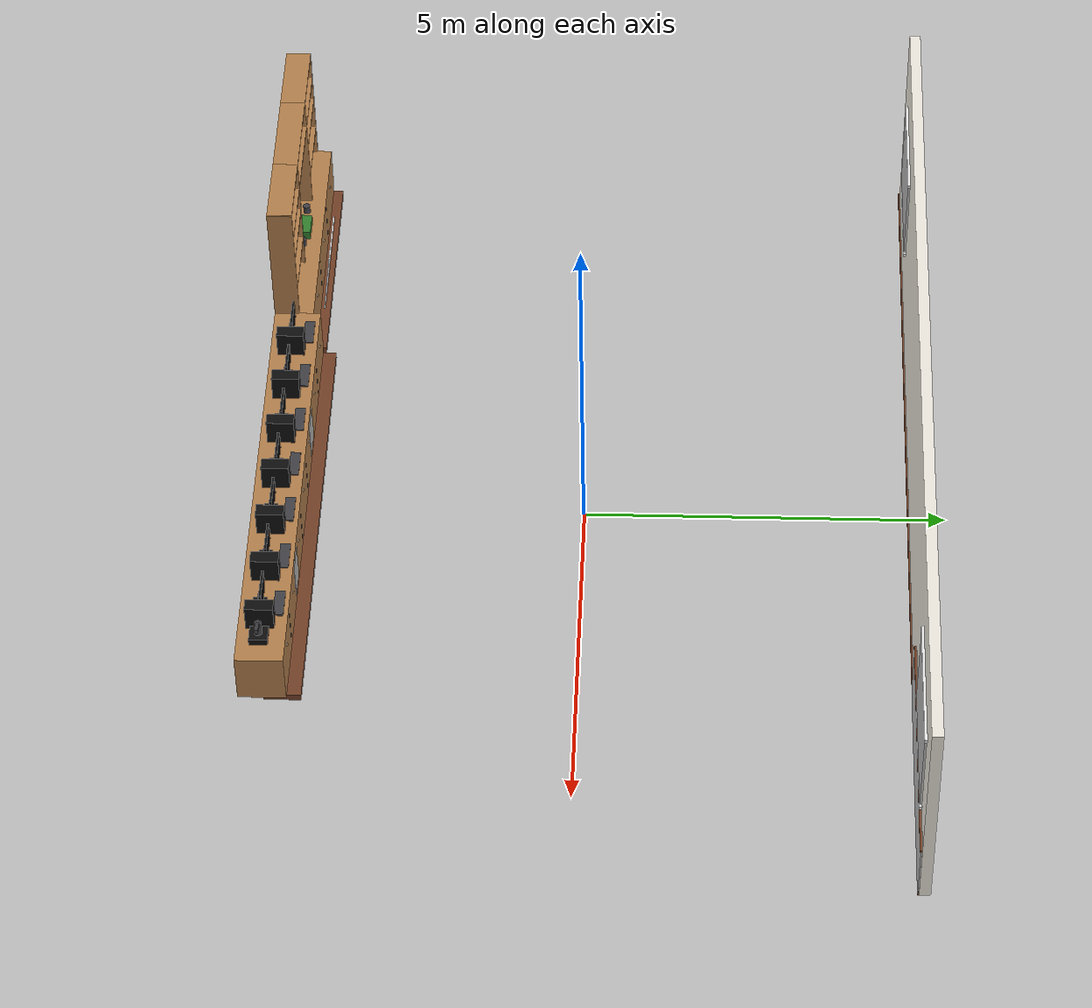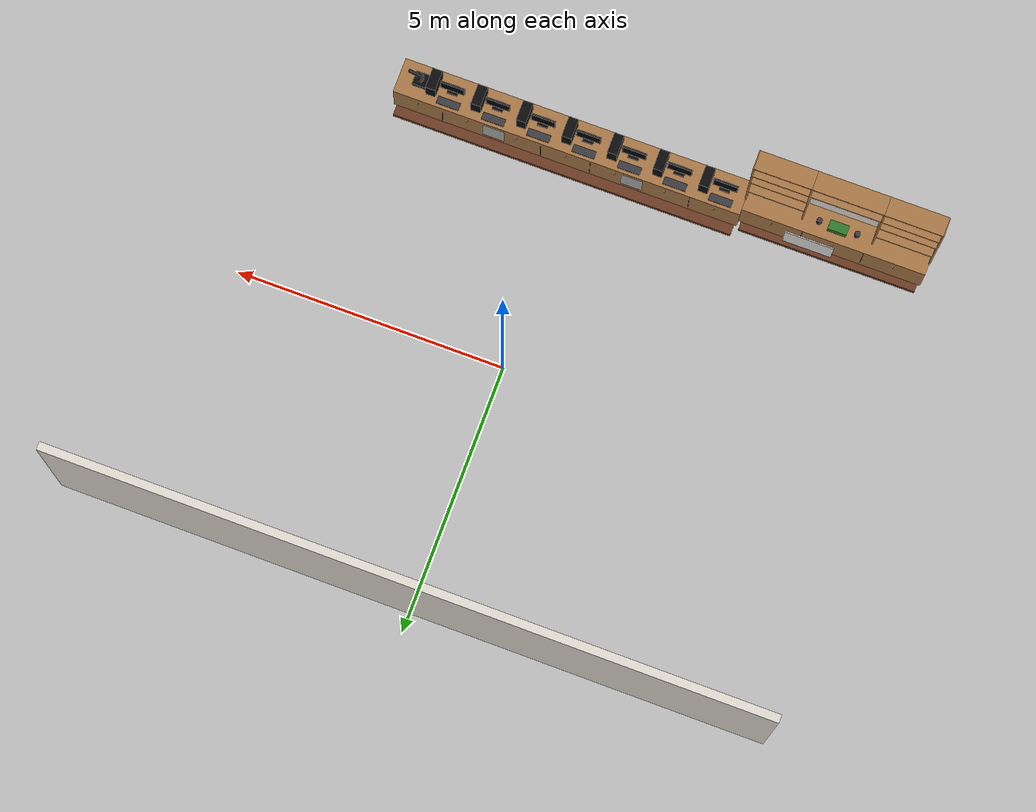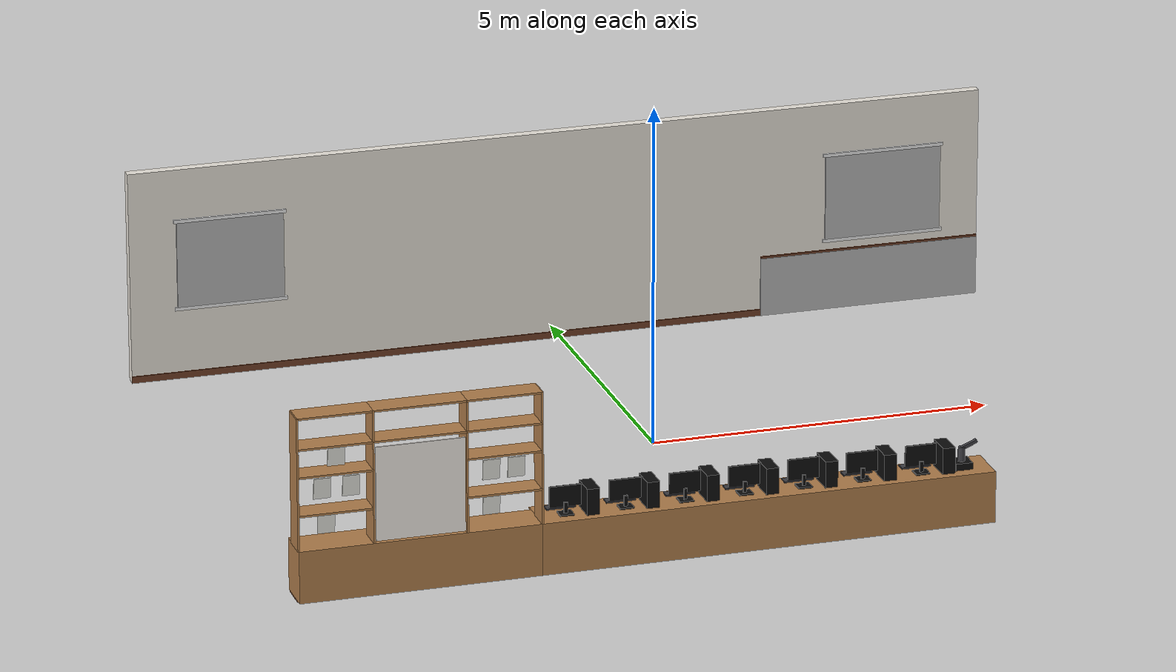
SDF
<sdf version="1.6">
 <world name="mahadev_lab">
  <include><uri>model://sun</uri></include>
  <model name="wall_left_counter">
   <static>true</static>
   <pose>0.0000 4.5750 0.0000 0.0000 0.0000 0.0000</pose>
   <link name="link">
    <visual name="v1">
     <pose>0.0000 0.0000 1.6000 0.0000 0.0000 0.0000</pose>
     <geometry><box><size>13 0.15 3.2</size></box></geometry>
     <material>
      <ambient>0.93 0.91 0.87 1</ambient>
      <diffuse>0.93 0.91 0.87 1</diffuse>
      <specular>0.1 0.1 0.1 1</specular>
     </material>
    </visual>
    <collision name="c1">
     <pose>0.0000 0.0000 1.6000 0.0000 0.0000 0.0000</pose>
     <geometry><box><size>13 0.15 3.2</size></box></geometry>
     <surface><friction><ode><mu>100</mu><mu2>100</mu2></ode></friction></surface>
    </collision>
    <visual name="v2">
     <pose>0.0000 -0.0850 0.0500 0.0000 0.0000 0.0000</pose>
     <geometry><box><size>13 0.02 0.1</size></box></geometry>
     <material>
      <ambient>0.45 0.25 0.15 1</ambient>
      <diffuse>0.45 0.25 0.15 1</diffuse>
      <specular>0.1 0.1 0.1 1</specular>
     </material>
    </visual>
    <visual name="v3">
     <pose>4.8000 -0.0870 0.4500 0.0000 0.0000 0.0000</pose>
     <geometry><box><size>3.4 0.02 0.9</size></box></geometry>
     <material>
      <script>
       <uri>model://mahadev_lab_media/materials/scripts</uri>
       <uri>model://mahadev_lab_media/materials/textures</uri>
       <name>Mahadev/wall_slats_5.7_1</name>
      </script>
     </material>
    </visual>
    <visual name="v4">
     <pose>4.8000 -0.0870 0.9150 0.0000 0.0000 0.0000</pose>
     <geometry><box><size>3.4 0.04 0.03</size></box></geometry>
     <material>
      <ambient>0.45 0.25 0.15 1</ambient>
      <diffuse>0.45 0.25 0.15 1</diffuse>
      <specular>0.1 0.1 0.1 1</specular>
     </material>
    </visual>
    <visual name="v5">
     <pose>5.0000 -0.0950 1.7500 0.0000 0.0000 0.0000</pose>
     <geometry><box><size>1.8 0.03 1.3</size></box></geometry>
     <material>
      <script>
       <uri>model://mahadev_lab_media/materials/scripts</uri>
       <uri>model://mahadev_lab_media/materials/textures</uri>
       <name>Mahadev/blinds_1_1</name>
      </script>
     </material>
    </visual>
    <visual name="v6">
     <pose>5.0000 -0.0950 1.0800 0.0000 0.0000 0.0000</pose>
     <geometry><box><size>1.88 0.035 0.05</size></box></geometry>
     <material>
      <ambient>0.92 0.92 0.92 1</ambient>
      <diffuse>0.92 0.92 0.92 1</diffuse>
      <specular>0.1 0.1 0.1 1</specular>
     </material>
    </visual>
    <visual name="v7">
     <pose>5.0000 -0.0950 2.4200 0.0000 0.0000 0.0000</pose>
     <geometry><box><size>1.88 0.035 0.05</size></box></geometry>
     <material>
      <ambient>0.92 0.92 0.92 1</ambient>
      <diffuse>0.92 0.92 0.92 1</diffuse>
      <specular>0.1 0.1 0.1 1</specular>
     </material>
    </visual>
    <visual name="v8">
     <pose>-5.0000 -0.0950 1.7500 0.0000 0.0000 0.0000</pose>
     <geometry><box><size>1.6 0.03 1.3</size></box></geometry>
     <material>
      <script>
       <uri>model://mahadev_lab_media/materials/scripts</uri>
       <uri>model://mahadev_lab_media/materials/textures</uri>
       <name>Mahadev/blinds_1_1</name>
      </script>
     </material>
    </visual>
    <visual name="v9">
     <pose>-5.0000 -0.0950 1.0800 0.0000 0.0000 0.0000</pose>
     <geometry><box><size>1.68 0.035 0.05</size></box></geometry>
     <material>
      <ambient>0.92 0.92 0.92 1</ambient>
      <diffuse>0.92 0.92 0.92 1</diffuse>
      <specular>0.1 0.1 0.1 1</specular>
     </material>
    </visual>
    <visual name="v10">
     <pose>-5.0000 -0.0950 2.4200 0.0000 0.0000 0.0000</pose>
     <geometry><box><size>1.68 0.035 0.05</size></box></geometry>
     <material>
      <ambient>0.92 0.92 0.92 1</ambient>
      <diffuse>0.92 0.92 0.92 1</diffuse>
      <specular>0.1 0.1 0.1 1</specular>
     </material>
    </visual>
   </link>
  </model>
  <model name="pc_counter">
   <static>true</static>
   <link name="link">
    <visual name="v1">
     <pose>0.2500 -4.1750 0.4750 0.0000 0.0000 0.0000</pose>
     <geometry><box><size>6.5 0.65 0.75</size></box></geometry>
     <material>
      <script>
       <uri>model://mahadev_lab_media/materials/scripts</uri>
       <uri>model://mahadev_lab_media/materials/textures</uri>
       <name>Mahadev/wood_light_6.5_1</name>
      </script>
     </material>
    </visual>
    <collision name="c1">
     <pose>0.2500 -4.1750 0.4750 0.0000 0.0000 0.0000</pose>
     <geometry><box><size>6.5 0.65 0.75</size></box></geometry>
     <surface><friction><ode><mu>100</mu><mu2>100</mu2></ode></friction></surface>
    </collision>
    <visual name="v2">
     <pose>0.2500 -3.9100 0.0500 0.0000 0.0000 0.0000</pose>
     <geometry><box><size>6.4 0.5 0.1</size></box></geometry>
     <material>
      <ambient>0.45 0.25 0.15 1</ambient>
      <diffuse>0.45 0.25 0.15 1</diffuse>
      <specular>0.1 0.1 0.1 1</specular>
     </material>
    </visual>
    <visual name="v3">
     <pose>-2.0714 -3.8470 0.4750 0.0000 0.0000 0.0000</pose>
     <geometry><box><size>0.008 0.004 0.6</size></box></geometry>
     <material>
      <ambient>0.25 0.25 0.27 1</ambient>
      <diffuse>0.25 0.25 0.27 1</diffuse>
      <specular>0.1 0.1 0.1 1</specular>
     </material>
    </visual>
    <visual name="v4">
     <pose>-1.1429 -3.8470 0.4750 0.0000 0.0000 0.0000</pose>
     <geometry><box><size>0.008 0.004 0.6</size></box></geometry>
     <material>
      <ambient>0.25 0.25 0.27 1</ambient>
      <diffuse>0.25 0.25 0.27 1</diffuse>
      <specular>0.1 0.1 0.1 1</specular>
     </material>
    </visual>
    <visual name="v5">
     <pose>-0.2143 -3.8470 0.4750 0.0000 0.0000 0.0000</pose>
     <geometry><box><size>0.008 0.004 0.6</size></box></geometry>
     <material>
      <ambient>0.25 0.25 0.27 1</ambient>
      <diffuse>0.25 0.25 0.27 1</diffuse>
      <specular>0.1 0.1 0.1 1</specular>
     </material>
    </visual>
    <visual name="v6">
     <pose>0.7143 -3.8470 0.4750 0.0000 0.0000 0.0000</pose>
     <geometry><box><size>0.008 0.004 0.6</size></box></geometry>
     <material>
      <ambient>0.25 0.25 0.27 1</ambient>
      <diffuse>0.25 0.25 0.27 1</diffuse>
      <specular>0.1 0.1 0.1 1</specular>
     </material>
    </visual>
    <visual name="v7">
     <pose>1.6429 -3.8470 0.4750 0.0000 0.0000 0.0000</pose>
     <geometry><box><size>0.008 0.004 0.6</size></box></geometry>
     <material>
      <ambient>0.25 0.25 0.27 1</ambient>
      <diffuse>0.25 0.25 0.27 1</diffuse>
      <specular>0.1 0.1 0.1 1</specular>
     </material>
    </visual>
    <visual name="v8">
     <pose>2.5714 -3.8470 0.4750 0.0000 0.0000 0.0000</pose>
     <geometry><box><size>0.008 0.004 0.6</size></box></geometry>
     <material>
      <ambient>0.25 0.25 0.27 1</ambient>
      <diffuse>0.25 0.25 0.27 1</diffuse>
      <specular>0.1 0.1 0.1 1</specular>
     </material>
    </visual>
    <visual name="v9">
     <pose>-2.5357 -3.8470 0.6500 0.0000 0.0000 0.0000</pose>
     <geometry><sphere><radius>0.02</radius></sphere></geometry>
     <material>
      <ambient>0.84 0.7 0.58 1</ambient>
      <diffuse>0.84 0.7 0.58 1</diffuse>
      <specular>0.1 0.1 0.1 1</specular>
     </material>
    </visual>
    <visual name="v10">
     <pose>-1.6071 -3.8470 0.6500 0.0000 0.0000 0.0000</pose>
     <geometry><sphere><radius>0.02</radius></sphere></geometry>
     <material>
      <ambient>0.84 0.7 0.58 1</ambient>
      <diffuse>0.84 0.7 0.58 1</diffuse>
      <specular>0.1 0.1 0.1 1</specular>
     </material>
    </visual>
    <visual name="v11">
     <pose>-0.6786 -3.8470 0.6500 0.0000 0.0000 0.0000</pose>
     <geometry><sphere><radius>0.02</radius></sphere></geometry>
     <material>
      <ambient>0.84 0.7 0.58 1</ambient>
      <diffuse>0.84 0.7 0.58 1</diffuse>
      <specular>0.1 0.1 0.1 1</specular>
     </material>
    </visual>
    <visual name="v12">
     <pose>0.2500 -3.8470 0.6500 0.0000 0.0000 0.0000</pose>
     <geometry><sphere><radius>0.02</radius></sphere></geometry>
     <material>
      <ambient>0.84 0.7 0.58 1</ambient>
      <diffuse>0.84 0.7 0.58 1</diffuse>
      <specular>0.1 0.1 0.1 1</specular>
     </material>
    </visual>
    <visual name="v13">
     <pose>1.1786 -3.8470 0.6500 0.0000 0.0000 0.0000</pose>
     <geometry><sphere><radius>0.02</radius></sphere></geometry>
     <material>
      <ambient>0.84 0.7 0.58 1</ambient>
      <diffuse>0.84 0.7 0.58 1</diffuse>
      <specular>0.1 0.1 0.1 1</specular>
     </material>
    </visual>
    <visual name="v14">
     <pose>2.1071 -3.8470 0.6500 0.0000 0.0000 0.0000</pose>
     <geometry><sphere><radius>0.02</radius></sphere></geometry>
     <material>
      <ambient>0.84 0.7 0.58 1</ambient>
      <diffuse>0.84 0.7 0.58 1</diffuse>
      <specular>0.1 0.1 0.1 1</specular>
     </material>
    </visual>
    <visual name="v15">
     <pose>3.0357 -3.8470 0.6500 0.0000 0.0000 0.0000</pose>
     <geometry><sphere><radius>0.02</radius></sphere></geometry>
     <material>
      <ambient>0.84 0.7 0.58 1</ambient>
      <diffuse>0.84 0.7 0.58 1</diffuse>
      <specular>0.1 0.1 0.1 1</specular>
     </material>
    </visual>
    <visual name="v16">
     <pose>-1.0000 -3.8440 0.5000 0.0000 0.0000 0.0000</pose>
     <geometry><box><size>0.4 0.004 0.55</size></box></geometry>
     <material>
      <script>
       <uri>model://mahadev_lab_media/materials/scripts</uri>
       <uri>model://mahadev_lab_media/materials/textures</uri>
       <name>Mahadev/lattice_2_3</name>
      </script>
     </material>
    </visual>
    <visual name="v17">
     <pose>1.6000 -3.8440 0.5000 0.0000 0.0000 0.0000</pose>
     <geometry><box><size>0.4 0.004 0.55</size></box></geometry>
     <material>
      <script>
       <uri>model://mahadev_lab_media/materials/scripts</uri>
       <uri>model://mahadev_lab_media/materials/textures</uri>
       <name>Mahadev/lattice_2_3</name>
      </script>
     </material>
    </visual>
    <visual name="v18">
     <pose>-2.6000 -4.2400 0.8600 0.0000 0.0000 1.5708</pose>
     <geometry><box><size>0.18 0.2 0.02</size></box></geometry>
     <material>
      <ambient>0.05 0.05 0.05 1</ambient>
      <diffuse>0.05 0.05 0.05 1</diffuse>
      <specular>0.1 0.1 0.1 1</specular>
     </material>
    </visual>
    <visual name="v19">
     <pose>-2.6000 -4.2400 0.9400 0.0000 0.0000 1.5708</pose>
     <geometry><box><size>0.03 0.05 0.16</size></box></geometry>
     <material>
      <ambient>0.05 0.05 0.05 1</ambient>
      <diffuse>0.05 0.05 0.05 1</diffuse>
      <specular>0.1 0.1 0.1 1</specular>
     </material>
    </visual>
    <visual name="v20">
     <pose>-2.6000 -4.2000 1.1000 0.0000 0.0000 1.5708</pose>
     <geometry><box><size>0.03 0.45 0.3</size></box></geometry>
     <material>
      <ambient>0.05 0.05 0.05 1</ambient>
      <diffuse>0.05 0.05 0.05 1</diffuse>
      <specular>0.1 0.1 0.1 1</specular>
     </material>
    </visual>
    <visual name="v21">
     <pose>-2.6000 -4.1840 1.1000 0.0000 0.0000 1.5708</pose>
     <geometry><box><size>0.002 0.43 0.28</size></box></geometry>
     <material>
      <ambient>0.02 0.02 0.03 1</ambient>
      <diffuse>0.02 0.02 0.03 1</diffuse>
      <specular>0.1 0.1 0.1 1</specular>
     </material>
    </visual>
    <visual name="v22">
     <pose>-2.2500 -4.2000 1.0400 0.0000 0.0000 0.0000</pose>
     <geometry><box><size>0.18 0.38 0.38</size></box></geometry>
     <material>
      <ambient>0.05 0.05 0.05 1</ambient>
      <diffuse>0.05 0.05 0.05 1</diffuse>
      <specular>0.1 0.1 0.1 1</specular>
     </material>
    </visual>
    <visual name="v23">
     <pose>-2.6000 -3.9800 0.8600 0.0000 0.0000 0.0000</pose>
     <geometry><box><size>0.42 0.14 0.02</size></box></geometry>
     <material>
      <ambient>0.25 0.25 0.27 1</ambient>
      <diffuse>0.25 0.25 0.27 1</diffuse>
      <specular>0.1 0.1 0.1 1</specular>
     </material>
    </visual>
    <visual name="v24">
     <pose>-1.7500 -4.2400 0.8600 0.0000 0.0000 1.5708</pose>
     <geometry><box><size>0.18 0.2 0.02</size></box></geometry>
     <material>
      <ambient>0.05 0.05 0.05 1</ambient>
      <diffuse>0.05 0.05 0.05 1</diffuse>
      <specular>0.1 0.1 0.1 1</specular>
     </material>
    </visual>
    <visual name="v25">
     <pose>-1.7500 -4.2400 0.9400 0.0000 0.0000 1.5708</pose>
     <geometry><box><size>0.03 0.05 0.16</size></box></geometry>
     <material>
      <ambient>0.05 0.05 0.05 1</ambient>
      <diffuse>0.05 0.05 0.05 1</diffuse>
      <specular>0.1 0.1 0.1 1</specular>
     </material>
    </visual>
    <visual name="v26">
     <pose>-1.7500 -4.2000 1.1000 0.0000 0.0000 1.5708</pose>
     <geometry><box><size>0.03 0.45 0.3</size></box></geometry>
     <material>
      <ambient>0.05 0.05 0.05 1</ambient>
      <diffuse>0.05 0.05 0.05 1</diffuse>
      <specular>0.1 0.1 0.1 1</specular>
     </material>
    </visual>
    <visual name="v27">
     <pose>-1.7500 -4.1840 1.1000 0.0000 0.0000 1.5708</pose>
     <geometry><box><size>0.002 0.43 0.28</size></box></geometry>
     <material>
      <ambient>0.02 0.02 0.03 1</ambient>
      <diffuse>0.02 0.02 0.03 1</diffuse>
      <specular>0.1 0.1 0.1 1</specular>
     </material>
    </visual>
    <visual name="v28">
     <pose>-1.4000 -4.2000 1.0400 0.0000 0.0000 0.0000</pose>
     <geometry><box><size>0.18 0.38 0.38</size></box></geometry>
     <material>
      <ambient>0.05 0.05 0.05 1</ambient>
      <diffuse>0.05 0.05 0.05 1</diffuse>
      <specular>0.1 0.1 0.1 1</specular>
     </material>
    </visual>
    <visual name="v29">
     <pose>-1.7500 -3.9800 0.8600 0.0000 0.0000 0.0000</pose>
     <geometry><box><size>0.42 0.14 0.02</size></box></geometry>
     <material>
      <ambient>0.25 0.25 0.27 1</ambient>
      <diffuse>0.25 0.25 0.27 1</diffuse>
      <specular>0.1 0.1 0.1 1</specular>
     </material>
    </visual>
    <visual name="v30">
     <pose>-0.9000 -4.2400 0.8600 0.0000 0.0000 1.5708</pose>
     <geometry><box><size>0.18 0.2 0.02</size></box></geometry>
     <material>
      <ambient>0.05 0.05 0.05 1</ambient>
      <diffuse>0.05 0.05 0.05 1</diffuse>
      <specular>0.1 0.1 0.1 1</specular>
     </material>
    </visual>
    <visual name="v31">
     <pose>-0.9000 -4.2400 0.9400 0.0000 0.0000 1.5708</pose>
     <geometry><box><size>0.03 0.05 0.16</size></box></geometry>
     <material>
      <ambient>0.05 0.05 0.05 1</ambient>
      <diffuse>0.05 0.05 0.05 1</diffuse>
      <specular>0.1 0.1 0.1 1</specular>
     </material>
    </visual>
    <visual name="v32">
     <pose>-0.9000 -4.2000 1.1000 0.0000 0.0000 1.5708</pose>
     <geometry><box><size>0.03 0.45 0.3</size></box></geometry>
     <material>
      <ambient>0.05 0.05 0.05 1</ambient>
      <diffuse>0.05 0.05 0.05 1</diffuse>
      <specular>0.1 0.1 0.1 1</specular>
     </material>
    </visual>
    <visual name="v33">
     <pose>-0.9000 -4.1840 1.1000 0.0000 0.0000 1.5708</pose>
     <geometry><box><size>0.002 0.43 0.28</size></box></geometry>
     <material>
      <ambient>0.02 0.02 0.03 1</ambient>
      <diffuse>0.02 0.02 0.03 1</diffuse>
      <specular>0.1 0.1 0.1 1</specular>
     </material>
    </visual>
    <visual name="v34">
     <pose>-0.5500 -4.2000 1.0400 0.0000 0.0000 0.0000</pose>
     <geometry><box><size>0.18 0.38 0.38</size></box></geometry>
     <material>
      <ambient>0.05 0.05 0.05 1</ambient>
      <diffuse>0.05 0.05 0.05 1</diffuse>
      <specular>0.1 0.1 0.1 1</specular>
     </material>
    </visual>
    <visual name="v35">
     <pose>-0.9000 -3.9800 0.8600 0.0000 0.0000 0.0000</pose>
     <geometry><box><size>0.42 0.14 0.02</size></box></geometry>
     <material>
      <ambient>0.25 0.25 0.27 1</ambient>
      <diffuse>0.25 0.25 0.27 1</diffuse>
      <specular>0.1 0.1 0.1 1</specular>
     </material>
    </visual>
    <visual name="v36">
     <pose>-0.0500 -4.2400 0.8600 0.0000 0.0000 1.5708</pose>
     <geometry><box><size>0.18 0.2 0.02</size></box></geometry>
     <material>
      <ambient>0.05 0.05 0.05 1</ambient>
      <diffuse>0.05 0.05 0.05 1</diffuse>
      <specular>0.1 0.1 0.1 1</specular>
     </material>
    </visual>
    <visual name="v37">
     <pose>-0.0500 -4.2400 0.9400 0.0000 0.0000 1.5708</pose>
     <geometry><box><size>0.03 0.05 0.16</size></box></geometry>
     <material>
      <ambient>0.05 0.05 0.05 1</ambient>
      <diffuse>0.05 0.05 0.05 1</diffuse>
      <specular>0.1 0.1 0.1 1</specular>
     </material>
    </visual>
    <visual name="v38">
     <pose>-0.0500 -4.2000 1.1000 0.0000 0.0000 1.5708</pose>
     <geometry><box><size>0.03 0.45 0.3</size></box></geometry>
     <material>
      <ambient>0.05 0.05 0.05 1</ambient>
      <diffuse>0.05 0.05 0.05 1</diffuse>
      <specular>0.1 0.1 0.1 1</specular>
     </material>
    </visual>
    <visual name="v39">
     <pose>-0.0500 -4.1840 1.1000 0.0000 0.0000 1.5708</pose>
     <geometry><box><size>0.002 0.43 0.28</size></box></geometry>
     <material>
      <ambient>0.02 0.02 0.03 1</ambient>
      <diffuse>0.02 0.02 0.03 1</diffuse>
      <specular>0.1 0.1 0.1 1</specular>
     </material>
    </visual>
    <visual name="v40">
     <pose>0.3000 -4.2000 1.0400 0.0000 0.0000 0.0000</pose>
     <geometry><box><size>0.18 0.38 0.38</size></box></geometry>
     <material>
      <ambient>0.05 0.05 0.05 1</ambient>
      <diffuse>0.05 0.05 0.05 1</diffuse>
      <specular>0.1 0.1 0.1 1</specular>
     </material>
    </visual>
    <visual name="v41">
     <pose>-0.0500 -3.9800 0.8600 0.0000 0.0000 0.0000</pose>
     <geometry><box><size>0.42 0.14 0.02</size></box></geometry>
     <material>
      <ambient>0.25 0.25 0.27 1</ambient>
      <diffuse>0.25 0.25 0.27 1</diffuse>
      <specular>0.1 0.1 0.1 1</specular>
     </material>
    </visual>
    <visual name="v42">
     <pose>0.8000 -4.2400 0.8600 0.0000 0.0000 1.5708</pose>
     <geometry><box><size>0.18 0.2 0.02</size></box></geometry>
     <material>
      <ambient>0.05 0.05 0.05 1</ambient>
      <diffuse>0.05 0.05 0.05 1</diffuse>
      <specular>0.1 0.1 0.1 1</specular>
     </material>
    </visual>
    <visual name="v43">
     <pose>0.8000 -4.2400 0.9400 0.0000 0.0000 1.5708</pose>
     <geometry><box><size>0.03 0.05 0.16</size></box></geometry>
     <material>
      <ambient>0.05 0.05 0.05 1</ambient>
      <diffuse>0.05 0.05 0.05 1</diffuse>
      <specular>0.1 0.1 0.1 1</specular>
     </material>
    </visual>
    <visual name="v44">
     <pose>0.8000 -4.2000 1.1000 0.0000 0.0000 1.5708</pose>
     <geometry><box><size>0.03 0.45 0.3</size></box></geometry>
     <material>
      <ambient>0.05 0.05 0.05 1</ambient>
      <diffuse>0.05 0.05 0.05 1</diffuse>
      <specular>0.1 0.1 0.1 1</specular>
     </material>
    </visual>
    <visual name="v45">
     <pose>0.8000 -4.1840 1.1000 0.0000 0.0000 1.5708</pose>
     <geometry><box><size>0.002 0.43 0.28</size></box></geometry>
     <material>
      <ambient>0.02 0.02 0.03 1</ambient>
      <diffuse>0.02 0.02 0.03 1</diffuse>
      <specular>0.1 0.1 0.1 1</specular>
     </material>
    </visual>
    <visual name="v46">
     <pose>1.1500 -4.2000 1.0400 0.0000 0.0000 0.0000</pose>
     <geometry><box><size>0.18 0.38 0.38</size></box></geometry>
     <material>
      <ambient>0.05 0.05 0.05 1</ambient>
      <diffuse>0.05 0.05 0.05 1</diffuse>
      <specular>0.1 0.1 0.1 1</specular>
     </material>
    </visual>
    <visual name="v47">
     <pose>0.8000 -3.9800 0.8600 0.0000 0.0000 0.0000</pose>
     <geometry><box><size>0.42 0.14 0.02</size></box></geometry>
     <material>
      <ambient>0.25 0.25 0.27 1</ambient>
      <diffuse>0.25 0.25 0.27 1</diffuse>
      <specular>0.1 0.1 0.1 1</specular>
     </material>
    </visual>
    <visual name="v48">
     <pose>1.6500 -4.2400 0.8600 0.0000 0.0000 1.5708</pose>
     <geometry><box><size>0.18 0.2 0.02</size></box></geometry>
     <material>
      <ambient>0.05 0.05 0.05 1</ambient>
      <diffuse>0.05 0.05 0.05 1</diffuse>
      <specular>0.1 0.1 0.1 1</specular>
     </material>
    </visual>
    <visual name="v49">
     <pose>1.6500 -4.2400 0.9400 0.0000 0.0000 1.5708</pose>
     <geometry><box><size>0.03 0.05 0.16</size></box></geometry>
     <material>
      <ambient>0.05 0.05 0.05 1</ambient>
      <diffuse>0.05 0.05 0.05 1</diffuse>
      <specular>0.1 0.1 0.1 1</specular>
     </material>
    </visual>
    <visual name="v50">
     <pose>1.6500 -4.2000 1.1000 0.0000 0.0000 1.5708</pose>
     <geometry><box><size>0.03 0.45 0.3</size></box></geometry>
     <material>
      <ambient>0.05 0.05 0.05 1</ambient>
      <diffuse>0.05 0.05 0.05 1</diffuse>
      <specular>0.1 0.1 0.1 1</specular>
     </material>
    </visual>
    <visual name="v51">
     <pose>1.6500 -4.1840 1.1000 0.0000 0.0000 1.5708</pose>
     <geometry><box><size>0.002 0.43 0.28</size></box></geometry>
     <material>
      <ambient>0.02 0.02 0.03 1</ambient>
      <diffuse>0.02 0.02 0.03 1</diffuse>
      <specular>0.1 0.1 0.1 1</specular>
     </material>
    </visual>
    <visual name="v52">
     <pose>2.0000 -4.2000 1.0400 0.0000 0.0000 0.0000</pose>
     <geometry><box><size>0.18 0.38 0.38</size></box></geometry>
     <material>
      <ambient>0.05 0.05 0.05 1</ambient>
      <diffuse>0.05 0.05 0.05 1</diffuse>
      <specular>0.1 0.1 0.1 1</specular>
     </material>
    </visual>
    <visual name="v53">
     <pose>1.6500 -3.9800 0.8600 0.0000 0.0000 0.0000</pose>
     <geometry><box><size>0.42 0.14 0.02</size></box></geometry>
     <material>
      <ambient>0.25 0.25 0.27 1</ambient>
      <diffuse>0.25 0.25 0.27 1</diffuse>
      <specular>0.1 0.1 0.1 1</specular>
     </material>
    </visual>
    <visual name="v54">
     <pose>2.5000 -4.2400 0.8600 0.0000 0.0000 1.5708</pose>
     <geometry><box><size>0.18 0.2 0.02</size></box></geometry>
     <material>
      <ambient>0.05 0.05 0.05 1</ambient>
      <diffuse>0.05 0.05 0.05 1</diffuse>
      <specular>0.1 0.1 0.1 1</specular>
     </material>
    </visual>
    <visual name="v55">
     <pose>2.5000 -4.2400 0.9400 0.0000 0.0000 1.5708</pose>
     <geometry><box><size>0.03 0.05 0.16</size></box></geometry>
     <material>
      <ambient>0.05 0.05 0.05 1</ambient>
      <diffuse>0.05 0.05 0.05 1</diffuse>
      <specular>0.1 0.1 0.1 1</specular>
     </material>
    </visual>
    <visual name="v56">
     <pose>2.5000 -4.2000 1.1000 0.0000 0.0000 1.5708</pose>
     <geometry><box><size>0.03 0.45 0.3</size></box></geometry>
     <material>
      <ambient>0.05 0.05 0.05 1</ambient>
      <diffuse>0.05 0.05 0.05 1</diffuse>
      <specular>0.1 0.1 0.1 1</specular>
     </material>
    </visual>
    <visual name="v57">
     <pose>2.5000 -4.1840 1.1000 0.0000 0.0000 1.5708</pose>
     <geometry><box><size>0.002 0.43 0.28</size></box></geometry>
     <material>
      <ambient>0.02 0.02 0.03 1</ambient>
      <diffuse>0.02 0.02 0.03 1</diffuse>
      <specular>0.1 0.1 0.1 1</specular>
     </material>
    </visual>
    <visual name="v58">
     <pose>2.8500 -4.2000 1.0400 0.0000 0.0000 0.0000</pose>
     <geometry><box><size>0.18 0.38 0.38</size></box></geometry>
     <material>
      <ambient>0.05 0.05 0.05 1</ambient>
      <diffuse>0.05 0.05 0.05 1</diffuse>
      <specular>0.1 0.1 0.1 1</specular>
     </material>
    </visual>
    <visual name="v59">
     <pose>2.5000 -3.9800 0.8600 0.0000 0.0000 0.0000</pose>
     <geometry><box><size>0.42 0.14 0.02</size></box></geometry>
     <material>
      <ambient>0.25 0.25 0.27 1</ambient>
      <diffuse>0.25 0.25 0.27 1</diffuse>
      <specular>0.1 0.1 0.1 1</specular>
     </material>
    </visual>
    <visual name="v60">
     <pose>3.1000 -4.2000 0.9000 0.0000 0.0000 0.0000</pose>
     <geometry><box><size>0.25 0.25 0.1</size></box></geometry>
     <material>
      <ambient>0.05 0.05 0.05 1</ambient>
      <diffuse>0.05 0.05 0.05 1</diffuse>
      <specular>0.1 0.1 0.1 1</specular>
     </material>
    </visual>
    <visual name="v61">
     <pose>3.1000 -4.2000 1.0500 0.0000 0.0000 0.0000</pose>
     <geometry><cylinder><radius>0.05</radius><length>0.2</length></cylinder></geometry>
     <material>
      <ambient>0.25 0.25 0.27 1</ambient>
      <diffuse>0.25 0.25 0.27 1</diffuse>
      <specular>0.1 0.1 0.1 1</specular>
     </material>
    </visual>
    <visual name="v62">
     <pose>3.2000 -4.2000 1.1700 0.0000 -0.4000 0.0000</pose>
     <geometry><box><size>0.25 0.05 0.05</size></box></geometry>
     <material>
      <ambient>0.25 0.25 0.27 1</ambient>
      <diffuse>0.25 0.25 0.27 1</diffuse>
      <specular>0.1 0.1 0.1 1</specular>
     </material>
    </visual>
   </link>
  </model>
  <model name="shelf_unit">
   <static>true</static>
   <link name="link">
    <visual name="v1">
     <pose>-4.7000 -4.2250 0.4750 0.0000 0.0000 0.0000</pose>
     <geometry><box><size>3.4 0.55 0.75</size></box></geometry>
     <material>
      <script>
       <uri>model://mahadev_lab_media/materials/scripts</uri>
       <uri>model://mahadev_lab_media/materials/textures</uri>
       <name>Mahadev/wood_light_3.4_1</name>
      </script>
     </material>
    </visual>
    <collision name="c1">
     <pose>-4.7000 -4.2250 0.4750 0.0000 0.0000 0.0000</pose>
     <geometry><box><size>3.4 0.55 0.75</size></box></geometry>
     <surface><friction><ode><mu>100</mu><mu2>100</mu2></ode></friction></surface>
    </collision>
    <visual name="v2">
     <pose>-4.7000 -4.0100 0.0500 0.0000 0.0000 0.0000</pose>
     <geometry><box><size>3.3 0.4 0.1</size></box></geometry>
     <material>
      <ambient>0.45 0.25 0.15 1</ambient>
      <diffuse>0.45 0.25 0.15 1</diffuse>
      <specular>0.1 0.1 0.1 1</specular>
     </material>
    </visual>
    <visual name="v3">
     <pose>-5.2667 -3.9470 0.4750 0.0000 0.0000 0.0000</pose>
     <geometry><box><size>0.008 0.004 0.6</size></box></geometry>
     <material>
      <ambient>0.25 0.25 0.27 1</ambient>
      <diffuse>0.25 0.25 0.27 1</diffuse>
      <specular>0.1 0.1 0.1 1</specular>
     </material>
    </visual>
    <visual name="v4">
     <pose>-4.1333 -3.9470 0.4750 0.0000 0.0000 0.0000</pose>
     <geometry><box><size>0.008 0.004 0.6</size></box></geometry>
     <material>
      <ambient>0.25 0.25 0.27 1</ambient>
      <diffuse>0.25 0.25 0.27 1</diffuse>
      <specular>0.1 0.1 0.1 1</specular>
     </material>
    </visual>
    <visual name="v5">
     <pose>-5.8333 -3.9470 0.6500 0.0000 0.0000 0.0000</pose>
     <geometry><sphere><radius>0.02</radius></sphere></geometry>
     <material>
      <ambient>0.84 0.7 0.58 1</ambient>
      <diffuse>0.84 0.7 0.58 1</diffuse>
      <specular>0.1 0.1 0.1 1</specular>
     </material>
    </visual>
    <visual name="v6">
     <pose>-4.7000 -3.9470 0.6500 0.0000 0.0000 0.0000</pose>
     <geometry><sphere><radius>0.02</radius></sphere></geometry>
     <material>
      <ambient>0.84 0.7 0.58 1</ambient>
      <diffuse>0.84 0.7 0.58 1</diffuse>
      <specular>0.1 0.1 0.1 1</specular>
     </material>
    </visual>
    <visual name="v7">
     <pose>-3.5667 -3.9470 0.6500 0.0000 0.0000 0.0000</pose>
     <geometry><sphere><radius>0.02</radius></sphere></geometry>
     <material>
      <ambient>0.84 0.7 0.58 1</ambient>
      <diffuse>0.84 0.7 0.58 1</diffuse>
      <specular>0.1 0.1 0.1 1</specular>
     </material>
    </visual>
    <visual name="v8">
     <pose>-6.4000 -4.3250 1.8000 0.0000 0.0000 0.0000</pose>
     <geometry><box><size>0.03 0.35 1.9</size></box></geometry>
     <material>
      <script>
       <uri>model://mahadev_lab_media/materials/scripts</uri>
       <uri>model://mahadev_lab_media/materials/textures</uri>
       <name>Mahadev/wood_light_1_2</name>
      </script>
     </material>
    </visual>
    <visual name="v9">
     <pose>-5.3500 -4.3250 1.8000 0.0000 0.0000 0.0000</pose>
     <geometry><box><size>0.03 0.35 1.9</size></box></geometry>
     <material>
      <script>
       <uri>model://mahadev_lab_media/materials/scripts</uri>
       <uri>model://mahadev_lab_media/materials/textures</uri>
       <name>Mahadev/wood_light_1_2</name>
      </script>
     </material>
    </visual>
    <visual name="v10">
     <pose>-4.0500 -4.3250 1.8000 0.0000 0.0000 0.0000</pose>
     <geometry><box><size>0.03 0.35 1.9</size></box></geometry>
     <material>
      <script>
       <uri>model://mahadev_lab_media/materials/scripts</uri>
       <uri>model://mahadev_lab_media/materials/textures</uri>
       <name>Mahadev/wood_light_1_2</name>
      </script>
     </material>
    </visual>
    <visual name="v11">
     <pose>-3.0000 -4.3250 1.8000 0.0000 0.0000 0.0000</pose>
     <geometry><box><size>0.03 0.35 1.9</size></box></geometry>
     <material>
      <script>
       <uri>model://mahadev_lab_media/materials/scripts</uri>
       <uri>model://mahadev_lab_media/materials/textures</uri>
       <name>Mahadev/wood_light_1_2</name>
      </script>
     </material>
    </visual>
    <visual name="v12">
     <pose>-5.8750 -4.3250 1.3500 0.0000 0.0000 0.0000</pose>
     <geometry><box><size>1.05 0.35 0.03</size></box></geometry>
     <material>
      <script>
       <uri>model://mahadev_lab_media/materials/scripts</uri>
       <uri>model://mahadev_lab_media/materials/textures</uri>
       <name>Mahadev/wood_light_2_1</name>
      </script>
     </material>
    </visual>
    <visual name="v13">
     <pose>-5.8750 -4.3250 1.9000 0.0000 0.0000 0.0000</pose>
     <geometry><box><size>1.05 0.35 0.03</size></box></geometry>
     <material>
      <script>
       <uri>model://mahadev_lab_media/materials/scripts</uri>
       <uri>model://mahadev_lab_media/materials/textures</uri>
       <name>Mahadev/wood_light_2_1</name>
      </script>
     </material>
    </visual>
    <visual name="v14">
     <pose>-5.8750 -4.3250 2.3000 0.0000 0.0000 0.0000</pose>
     <geometry><box><size>1.05 0.35 0.03</size></box></geometry>
     <material>
      <script>
       <uri>model://mahadev_lab_media/materials/scripts</uri>
       <uri>model://mahadev_lab_media/materials/textures</uri>
       <name>Mahadev/wood_light_2_1</name>
      </script>
     </material>
    </visual>
    <visual name="v15">
     <pose>-5.8750 -4.3250 2.7400 0.0000 0.0000 0.0000</pose>
     <geometry><box><size>1.05 0.35 0.03</size></box></geometry>
     <material>
      <script>
       <uri>model://mahadev_lab_media/materials/scripts</uri>
       <uri>model://mahadev_lab_media/materials/textures</uri>
       <name>Mahadev/wood_light_2_1</name>
      </script>
     </material>
    </visual>
    <visual name="v16">
     <pose>-3.5250 -4.3250 1.3500 0.0000 0.0000 0.0000</pose>
     <geometry><box><size>1.05 0.35 0.03</size></box></geometry>
     <material>
      <script>
       <uri>model://mahadev_lab_media/materials/scripts</uri>
       <uri>model://mahadev_lab_media/materials/textures</uri>
       <name>Mahadev/wood_light_2_1</name>
      </script>
     </material>
    </visual>
    <visual name="v17">
     <pose>-3.5250 -4.3250 1.9000 0.0000 0.0000 0.0000</pose>
     <geometry><box><size>1.05 0.35 0.03</size></box></geometry>
     <material>
      <script>
       <uri>model://mahadev_lab_media/materials/scripts</uri>
       <uri>model://mahadev_lab_media/materials/textures</uri>
       <name>Mahadev/wood_light_2_1</name>
      </script>
     </material>
    </visual>
    <visual name="v18">
     <pose>-3.5250 -4.3250 2.3000 0.0000 0.0000 0.0000</pose>
     <geometry><box><size>1.05 0.35 0.03</size></box></geometry>
     <material>
      <script>
       <uri>model://mahadev_lab_media/materials/scripts</uri>
       <uri>model://mahadev_lab_media/materials/textures</uri>
       <name>Mahadev/wood_light_2_1</name>
      </script>
     </material>
    </visual>
    <visual name="v19">
     <pose>-3.5250 -4.3250 2.7400 0.0000 0.0000 0.0000</pose>
     <geometry><box><size>1.05 0.35 0.03</size></box></geometry>
     <material>
      <script>
       <uri>model://mahadev_lab_media/materials/scripts</uri>
       <uri>model://mahadev_lab_media/materials/textures</uri>
       <name>Mahadev/wood_light_2_1</name>
      </script>
     </material>
    </visual>
    <visual name="v20">
     <pose>-4.7000 -4.3250 2.3000 0.0000 0.0000 0.0000</pose>
     <geometry><box><size>1.3 0.35 0.03</size></box></geometry>
     <material>
      <script>
       <uri>model://mahadev_lab_media/materials/scripts</uri>
       <uri>model://mahadev_lab_media/materials/textures</uri>
       <name>Mahadev/wood_light_2_1</name>
      </script>
     </material>
    </visual>
    <visual name="v21">
     <pose>-4.7000 -4.3250 2.7400 0.0000 0.0000 0.0000</pose>
     <geometry><box><size>1.3 0.35 0.03</size></box></geometry>
     <material>
      <script>
       <uri>model://mahadev_lab_media/materials/scripts</uri>
       <uri>model://mahadev_lab_media/materials/textures</uri>
       <name>Mahadev/wood_light_2_1</name>
      </script>
     </material>
    </visual>
    <visual name="v22">
     <pose>-4.7000 -4.4800 1.5500 0.0000 0.0000 0.0000</pose>
     <geometry><box><size>1.25 0.02 1.35</size></box></geometry>
     <material>
      <ambient>0.97 0.95 0.92 1</ambient>
      <diffuse>0.97 0.95 0.92 1</diffuse>
      <specular>0.1 0.1 0.1 1</specular>
     </material>
    </visual>
    <visual name="v23">
     <pose>-6.0000 -4.4300 1.2000 0.1200 0.0000 0.0000</pose>
     <geometry><box><size>0.24 0.01 0.3</size></box></geometry>
     <material>
      <ambient>0.95 0.95 0.92 1</ambient>
      <diffuse>0.95 0.95 0.92 1</diffuse>
      <specular>0.1 0.1 0.1 1</specular>
     </material>
    </visual>
    <visual name="v24">
     <pose>-5.6500 -4.4300 1.7000 0.1200 0.0000 0.0000</pose>
     <geometry><box><size>0.24 0.01 0.3</size></box></geometry>
     <material>
      <ambient>0.95 0.95 0.92 1</ambient>
      <diffuse>0.95 0.95 0.92 1</diffuse>
      <specular>0.1 0.1 0.1 1</specular>
     </material>
    </visual>
    <visual name="v25">
     <pose>-6.0500 -4.4300 1.7000 0.1200 0.0000 0.0000</pose>
     <geometry><box><size>0.24 0.01 0.3</size></box></geometry>
     <material>
      <ambient>0.95 0.95 0.92 1</ambient>
      <diffuse>0.95 0.95 0.92 1</diffuse>
      <specular>0.1 0.1 0.1 1</specular>
     </material>
    </visual>
    <visual name="v26">
     <pose>-3.7000 -4.4300 1.2000 0.1200 0.0000 0.0000</pose>
     <geometry><box><size>0.24 0.01 0.3</size></box></geometry>
     <material>
      <ambient>0.95 0.95 0.92 1</ambient>
      <diffuse>0.95 0.95 0.92 1</diffuse>
      <specular>0.1 0.1 0.1 1</specular>
     </material>
    </visual>
    <visual name="v27">
     <pose>-3.3500 -4.4300 1.7000 0.1200 0.0000 0.0000</pose>
     <geometry><box><size>0.24 0.01 0.3</size></box></geometry>
     <material>
      <ambient>0.95 0.95 0.92 1</ambient>
      <diffuse>0.95 0.95 0.92 1</diffuse>
      <specular>0.1 0.1 0.1 1</specular>
     </material>
    </visual>
    <visual name="v28">
     <pose>-3.7000 -4.4300 1.7000 0.1200 0.0000 0.0000</pose>
     <geometry><box><size>0.24 0.01 0.3</size></box></geometry>
     <material>
      <ambient>0.95 0.95 0.92 1</ambient>
      <diffuse>0.95 0.95 0.92 1</diffuse>
      <specular>0.1 0.1 0.1 1</specular>
     </material>
    </visual>
    <visual name="v29">
     <pose>-5.8500 -4.4300 2.1500 0.1200 0.0000 0.0000</pose>
     <geometry><box><size>0.24 0.01 0.3</size></box></geometry>
     <material>
      <ambient>0.95 0.95 0.92 1</ambient>
      <diffuse>0.95 0.95 0.92 1</diffuse>
      <specular>0.1 0.1 0.1 1</specular>
     </material>
    </visual>
    <visual name="v30">
     <pose>-4.7000 -4.2000 0.9200 0.0000 0.0000 0.0000</pose>
     <geometry><box><size>0.35 0.18 0.14</size></box></geometry>
     <material>
      <ambient>0.2 0.5 0.18 1</ambient>
      <diffuse>0.2 0.5 0.18 1</diffuse>
      <specular>0.1 0.1 0.1 1</specular>
     </material>
    </visual>
    <visual name="v31">
     <pose>-5.0500 -4.2000 0.9500 0.0000 0.0000 0.0000</pose>
     <geometry><cylinder><radius>0.05</radius><length>0.12</length></cylinder></geometry>
     <material>
      <ambient>0.25 0.25 0.27 1</ambient>
      <diffuse>0.25 0.25 0.27 1</diffuse>
      <specular>0.1 0.1 0.1 1</specular>
     </material>
    </visual>
    <visual name="v32">
     <pose>-4.3500 -4.2000 0.9500 0.0000 0.0000 0.0000</pose>
     <geometry><cylinder><radius>0.05</radius><length>0.12</length></cylinder></geometry>
     <material>
      <ambient>0.25 0.25 0.27 1</ambient>
      <diffuse>0.25 0.25 0.27 1</diffuse>
      <specular>0.1 0.1 0.1 1</specular>
     </material>
    </visual>
    <visual name="v33">
     <pose>-4.3000 -3.8400 0.5500 -0.1200 0.0000 0.0000</pose>
     <geometry><box><size>0.9 0.02 1.1</size></box></geometry>
     <material>
      <ambient>0.92 0.92 0.92 1</ambient>
      <diffuse>0.92 0.92 0.92 1</diffuse>
      <specular>0.1 0.1 0.1 1</specular>
     </material>
    </visual>
    <collision name="c33">
     <pose>-4.3000 -3.8400 0.5500 -0.1200 0.0000 0.0000</pose>
     <geometry><box><size>0.9 0.02 1.1</size></box></geometry>
     <surface><friction><ode><mu>100</mu><mu2>100</mu2></ode></friction></surface>
    </collision>
   </link>
  </model>
 </world>
</sdf>
